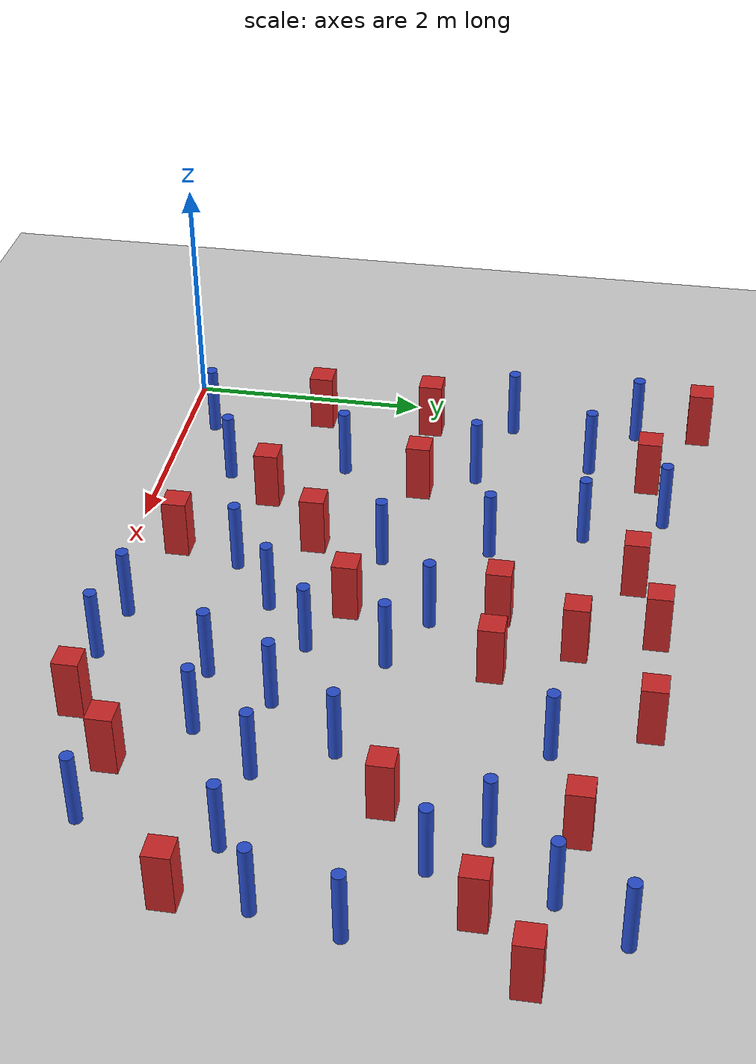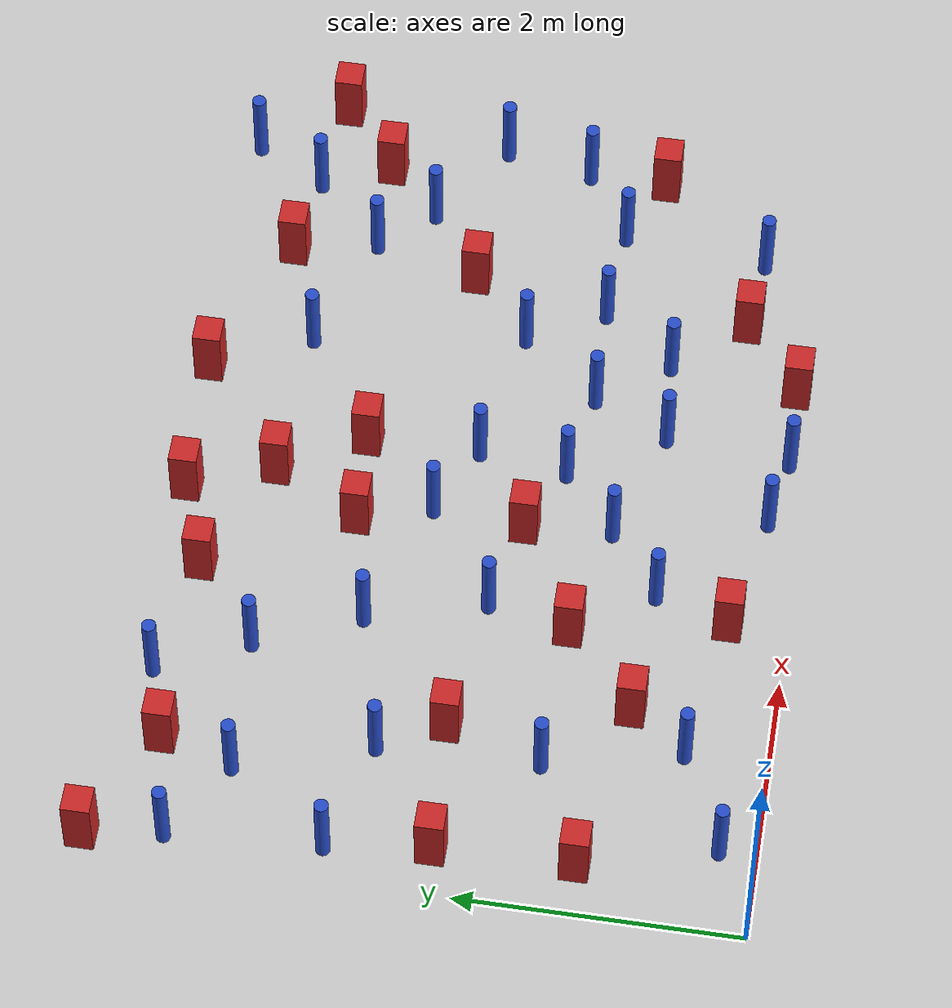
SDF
<sdf version="1.6">
 <world name="default">
  <model name="ground_plane">
   <static>1</static>
   <link name="link">
    <collision name="collision">
     <geometry><plane><normal>0 0 1</normal><size>100 100</size></plane></geometry>
     <surface><friction><ode><mu>100</mu><mu2>50</mu2></ode></friction></surface>
    </collision>
    <visual name="visual">
     <cast_shadows>0</cast_shadows>
     <geometry><plane><normal>0 0 1</normal><size>100 100</size></plane></geometry>
     <material>
      <ambient>1.0 1.0 1.0 1.0</ambient>
      <diffuse>0.8 0.8 0.8 1.0</diffuse>
      <specular>0.01 0.01 0.01 1.000000</specular>
     </material>
    </visual>
   </link>
  </model>
  <model name="square_post_obstacle6">
   <static>true</static>
   <pose>1.60942425085 0.988054612584 1.91545236811e-07 -7.35059704564e-06 1.12565212e-07 2.39332434364e-05</pose>
   <link name="link">
    <pose>0 0 0.25 0 -0 0</pose>
    <inertial>
     <mass>100</mass>
     <inertia>
      <ixx>0.166667</ixx>
      <ixy>0</ixy>
      <ixz>0</ixz>
      <iyy>0.166667</iyy>
      <iyz>0</iyz>
      <izz>0.166667</izz>
     </inertia>
    </inertial>
    <collision name="collision"><geometry><box><size>.2 .2 .5</size></box></geometry></collision>
    <visual name="visual">
     <geometry><box><size>.2 .2 .5</size></box></geometry>
     <material>
      <script><name>Gazebo/Red</name><uri>file://media/materials/scripts/gazebo.material</uri></script>
     </material>
    </visual>
   </link>
  </model>
  <model name="square_post_obstacle8">
   <static>true</static>
   <pose>4.03454843956 4.36539014241 1.91545236811e-07 -7.35059704564e-06 1.12565212e-07 2.39332434364e-05</pose>
   <link name="link">
    <pose>0 0 0.25 0 -0 0</pose>
    <inertial>
     <mass>100</mass>
     <inertia>
      <ixx>0.166667</ixx>
      <ixy>0</ixy>
      <ixz>0</ixz>
      <iyy>0.166667</iyy>
      <iyz>0</iyz>
      <izz>0.166667</izz>
     </inertia>
    </inertial>
    <collision name="collision"><geometry><box><size>.2 .2 .5</size></box></geometry></collision>
    <visual name="visual">
     <geometry><box><size>.2 .2 .5</size></box></geometry>
     <material>
      <script><name>Gazebo/Red</name><uri>file://media/materials/scripts/gazebo.material</uri></script>
     </material>
    </visual>
   </link>
  </model>
  <model name="square_post_obstacle15">
   <static>true</static>
   <pose>5.98368402551 3.34213384445 1.91545236811e-07 -7.35059704564e-06 1.12565212e-07 2.39332434364e-05</pose>
   <link name="link">
    <pose>0 0 0.25 0 -0 0</pose>
    <inertial>
     <mass>100</mass>
     <inertia>
      <ixx>0.166667</ixx>
      <ixy>0</ixy>
      <ixz>0</ixz>
      <iyy>0.166667</iyy>
      <iyz>0</iyz>
      <izz>0.166667</izz>
     </inertia>
    </inertial>
    <collision name="collision"><geometry><box><size>.2 .2 .5</size></box></geometry></collision>
    <visual name="visual">
     <geometry><box><size>.2 .2 .5</size></box></geometry>
     <material>
      <script><name>Gazebo/Red</name><uri>file://media/materials/scripts/gazebo.material</uri></script>
     </material>
    </visual>
   </link>
  </model>
  <model name="pole_obstacle9">
   <static>true</static>
   <pose>3.57325303484 2.32983173378 7.38925637345e-09 -8.47170692798e-08 1.24976764939e-08 -1.74513093025e-07</pose>
   <link name="link">
    <pose>0 0 0.3 0 -0 0</pose>
    <inertial>
     <mass>1</mass>
     <inertia><ixx>0.145833</ixx><ixy>0</ixy><ixz>0</ixz><iyy>0.145833</iyy><iyz>0</iyz><izz>0.125</izz></inertia>
    </inertial>
    <collision name="collision">
     <geometry><cylinder><radius>0.05</radius><length>.6</length></cylinder></geometry>
    </collision>
    <visual name="visual">
     <geometry><cylinder><radius>0.05</radius><length>.6</length></cylinder></geometry>
     <material>
      <script><name>Gazebo/Blue</name><uri>file://media/materials/scripts/gazebo.material</uri></script>
     </material>
    </visual>
   </link>
  </model>
  <model name="square_post_obstacle17">
   <static>true</static>
   <pose>2.98692828114 4.34356148915 1.91545236811e-07 -7.35059704564e-06 1.12565212e-07 2.39332434364e-05</pose>
   <link name="link">
    <pose>0 0 0.25 0 -0 0</pose>
    <inertial>
     <mass>100</mass>
     <inertia>
      <ixx>0.166667</ixx>
      <ixy>0</ixy>
      <ixz>0</ixz>
      <iyy>0.166667</iyy>
      <iyz>0</iyz>
      <izz>0.166667</izz>
     </inertia>
    </inertial>
    <collision name="collision"><geometry><box><size>.2 .2 .5</size></box></geometry></collision>
    <visual name="visual">
     <geometry><box><size>.2 .2 .5</size></box></geometry>
     <material>
      <script><name>Gazebo/Red</name><uri>file://media/materials/scripts/gazebo.material</uri></script>
     </material>
    </visual>
   </link>
  </model>
  <model name="square_post_obstacle24">
   <static>true</static>
   <pose>4.42241109473 0.156038550293 1.91545236811e-07 -7.35059704564e-06 1.12565212e-07 2.39332434364e-05</pose>
   <link name="link">
    <pose>0 0 0.25 0 -0 0</pose>
    <inertial>
     <mass>100</mass>
     <inertia>
      <ixx>0.166667</ixx>
      <ixy>0</ixy>
      <ixz>0</ixz>
      <iyy>0.166667</iyy>
      <iyz>0</iyz>
      <izz>0.166667</izz>
     </inertia>
    </inertial>
    <collision name="collision"><geometry><box><size>.2 .2 .5</size></box></geometry></collision>
    <visual name="visual">
     <geometry><box><size>.2 .2 .5</size></box></geometry>
     <material>
      <script><name>Gazebo/Red</name><uri>file://media/materials/scripts/gazebo.material</uri></script>
     </material>
    </visual>
   </link>
  </model>
  <model name="square_post_obstacle27">
   <static>true</static>
   <pose>2.34581329944 4.12629788285 1.91545236811e-07 -7.35059704564e-06 1.12565212e-07 2.39332434364e-05</pose>
   <link name="link">
    <pose>0 0 0.25 0 -0 0</pose>
    <inertial>
     <mass>100</mass>
     <inertia>
      <ixx>0.166667</ixx>
      <ixy>0</ixy>
      <ixz>0</ixz>
      <iyy>0.166667</iyy>
      <iyz>0</iyz>
      <izz>0.166667</izz>
     </inertia>
    </inertial>
    <collision name="collision"><geometry><box><size>.2 .2 .5</size></box></geometry></collision>
    <visual name="visual">
     <geometry><box><size>.2 .2 .5</size></box></geometry>
     <material>
      <script><name>Gazebo/Red</name><uri>file://media/materials/scripts/gazebo.material</uri></script>
     </material>
    </visual>
   </link>
  </model>
  <model name="pole_obstacle18">
   <static>true</static>
   <pose>1.09556742377 1.54165074183 7.38925637345e-09 -8.471706928e-08 1.24976765079e-08 -1.74513093017e-07</pose>
   <link name="link">
    <pose>0 0 0.3 0 -0 0</pose>
    <inertial>
     <mass>1</mass>
     <inertia><ixx>0.145833</ixx><ixy>0</ixy><ixz>0</ixz><iyy>0.145833</iyy><iyz>0</iyz><izz>0.125</izz></inertia>
    </inertial>
    <collision name="collision">
     <geometry><cylinder><radius>0.05</radius><length>.6</length></cylinder></geometry>
    </collision>
    <visual name="visual">
     <geometry><cylinder><radius>0.05</radius><length>.6</length></cylinder></geometry>
     <material>
      <script><name>Gazebo/Blue</name><uri>file://media/materials/scripts/gazebo.material</uri></script>
     </material>
    </visual>
   </link>
  </model>
  <model name="square_post_obstacle29">
   <static>true</static>
   <pose>0.333099254141 2.17948500555 1.91545236811e-07 -7.35059704564e-06 1.12565212e-07 2.39332434364e-05</pose>
   <link name="link">
    <pose>0 0 0.25 0 -0 0</pose>
    <inertial>
     <mass>100</mass>
     <inertia>
      <ixx>0.166667</ixx>
      <ixy>0</ixy>
      <ixz>0</ixz>
      <iyy>0.166667</iyy>
      <iyz>0</iyz>
      <izz>0.166667</izz>
     </inertia>
    </inertial>
    <collision name="collision"><geometry><box><size>.2 .2 .5</size></box></geometry></collision>
    <visual name="visual">
     <geometry><box><size>.2 .2 .5</size></box></geometry>
     <material>
      <script><name>Gazebo/Red</name><uri>file://media/materials/scripts/gazebo.material</uri></script>
     </material>
    </visual>
   </link>
  </model>
  <model name="pole_obstacle27">
   <static>true</static>
   <pose>0.178403654068 3.98952874488 7.38925637345e-09 -8.471706928e-08 1.24976765109e-08 -1.74513093015e-07</pose>
   <link name="link">
    <pose>0 0 0.3 0 -0 0</pose>
    <inertial>
     <mass>1</mass>
     <inertia><ixx>0.145833</ixx><ixy>0</ixy><ixz>0</ixz><iyy>0.145833</iyy><iyz>0</iyz><izz>0.125</izz></inertia>
    </inertial>
    <collision name="collision">
     <geometry><cylinder><radius>0.05</radius><length>.6</length></cylinder></geometry>
    </collision>
    <visual name="visual">
     <geometry><cylinder><radius>0.05</radius><length>.6</length></cylinder></geometry>
     <material>
      <script><name>Gazebo/Blue</name><uri>file://media/materials/scripts/gazebo.material</uri></script>
     </material>
    </visual>
   </link>
  </model>
  <model name="pole_obstacle31">
   <static>true</static>
   <pose>2.55930343675 0.937314324829 7.38925637345e-09 -8.471706928e-08 1.24976765177e-08 -1.74513093012e-07</pose>
   <link name="link">
    <pose>0 0 0.3 0 -0 0</pose>
    <inertial>
     <mass>1</mass>
     <inertia><ixx>0.145833</ixx><ixy>0</ixy><ixz>0</ixz><iyy>0.145833</iyy><iyz>0</iyz><izz>0.125</izz></inertia>
    </inertial>
    <collision name="collision">
     <geometry><cylinder><radius>0.05</radius><length>.6</length></cylinder></geometry>
    </collision>
    <visual name="visual">
     <geometry><cylinder><radius>0.05</radius><length>.6</length></cylinder></geometry>
     <material>
      <script><name>Gazebo/Blue</name><uri>file://media/materials/scripts/gazebo.material</uri></script>
     </material>
    </visual>
   </link>
  </model>
  <model name="square_post_obstacle35">
   <static>true</static>
   <pose>1.30073885642 2.22475498952 1.91545236811e-07 -7.35059704564e-06 1.12565212e-07 2.39332434364e-05</pose>
   <link name="link">
    <pose>0 0 0.25 0 -0 0</pose>
    <inertial>
     <mass>100</mass>
     <inertia>
      <ixx>0.166667</ixx>
      <ixy>0</ixy>
      <ixz>0</ixz>
      <iyy>0.166667</iyy>
      <iyz>0</iyz>
      <izz>0.166667</izz>
     </inertia>
    </inertial>
    <collision name="collision"><geometry><box><size>.2 .2 .5</size></box></geometry></collision>
    <visual name="visual">
     <geometry><box><size>.2 .2 .5</size></box></geometry>
     <material>
      <script><name>Gazebo/Red</name><uri>file://media/materials/scripts/gazebo.material</uri></script>
     </material>
    </visual>
   </link>
  </model>
  <model name="pole_obstacle53">
   <static>true</static>
   <pose>0.759937927615 3.6263753583 7.38925637345e-09 -8.47170692799e-08 1.2497676509e-08 -1.74513093016e-07</pose>
   <link name="link">
    <pose>0 0 0.3 0 -0 0</pose>
    <inertial>
     <mass>1</mass>
     <inertia><ixx>0.145833</ixx><ixy>0</ixy><ixz>0</ixz><iyy>0.145833</iyy><iyz>0</iyz><izz>0.125</izz></inertia>
    </inertial>
    <collision name="collision">
     <geometry><cylinder><radius>0.05</radius><length>.6</length></cylinder></geometry>
    </collision>
    <visual name="visual">
     <geometry><cylinder><radius>0.05</radius><length>.6</length></cylinder></geometry>
     <material>
      <script><name>Gazebo/Blue</name><uri>file://media/materials/scripts/gazebo.material</uri></script>
     </material>
    </visual>
   </link>
  </model>
  <model name="pole_obstacle59">
   <static>true</static>
   <pose>1.06092873174 2.67650158417 7.38925637345e-09 -8.47170692799e-08 1.24976765053e-08 -1.74513093017e-07</pose>
   <link name="link">
    <pose>0 0 0.3 0 -0 0</pose>
    <inertial>
     <mass>1</mass>
     <inertia><ixx>0.145833</ixx><ixy>0</ixy><ixz>0</ixz><iyy>0.145833</iyy><iyz>0</iyz><izz>0.125</izz></inertia>
    </inertial>
    <collision name="collision">
     <geometry><cylinder><radius>0.05</radius><length>.6</length></cylinder></geometry>
    </collision>
    <visual name="visual">
     <geometry><cylinder><radius>0.05</radius><length>.6</length></cylinder></geometry>
     <material>
      <script><name>Gazebo/Blue</name><uri>file://media/materials/scripts/gazebo.material</uri></script>
     </material>
    </visual>
   </link>
  </model>
  <model name="pole_obstacle62">
   <static>true</static>
   <pose>5.62256412023 1.5481958719 7.38925637345e-09 -8.471706928e-08 1.24976765134e-08 -1.74513093015e-07</pose>
   <link name="link">
    <pose>0 0 0.3 0 -0 0</pose>
    <inertial>
     <mass>1</mass>
     <inertia><ixx>0.145833</ixx><ixy>0</ixy><ixz>0</ixz><iyy>0.145833</iyy><iyz>0</iyz><izz>0.125</izz></inertia>
    </inertial>
    <collision name="collision">
     <geometry><cylinder><radius>0.05</radius><length>.6</length></cylinder></geometry>
    </collision>
    <visual name="visual">
     <geometry><cylinder><radius>0.05</radius><length>.6</length></cylinder></geometry>
     <material>
      <script><name>Gazebo/Blue</name><uri>file://media/materials/scripts/gazebo.material</uri></script>
     </material>
    </visual>
   </link>
  </model>
  <model name="square_post_obstacle64">
   <static>true</static>
   <pose>5.08806290985 2.57877850138 1.91545236811e-07 -7.35059704564e-06 1.12565212e-07 2.39332434364e-05</pose>
   <link name="link">
    <pose>0 0 0.25 0 -0 0</pose>
    <inertial>
     <mass>100</mass>
     <inertia>
      <ixx>0.166667</ixx>
      <ixy>0</ixy>
      <ixz>0</ixz>
      <iyy>0.166667</iyy>
      <iyz>0</iyz>
      <izz>0.166667</izz>
     </inertia>
    </inertial>
    <collision name="collision"><geometry><box><size>.2 .2 .5</size></box></geometry></collision>
    <visual name="visual">
     <geometry><box><size>.2 .2 .5</size></box></geometry>
     <material>
      <script><name>Gazebo/Red</name><uri>file://media/materials/scripts/gazebo.material</uri></script>
     </material>
    </visual>
   </link>
  </model>
  <model name="square_post_obstacle66">
   <static>true</static>
   <pose>2.88798869809 3.10671803235 1.91545236811e-07 -7.35059704564e-06 1.12565212e-07 2.39332434364e-05</pose>
   <link name="link">
    <pose>0 0 0.25 0 -0 0</pose>
    <inertial>
     <mass>100</mass>
     <inertia>
      <ixx>0.166667</ixx>
      <ixy>0</ixy>
      <ixz>0</ixz>
      <iyy>0.166667</iyy>
      <iyz>0</iyz>
      <izz>0.166667</izz>
     </inertia>
    </inertial>
    <collision name="collision"><geometry><box><size>.2 .2 .5</size></box></geometry></collision>
    <visual name="visual">
     <geometry><box><size>.2 .2 .5</size></box></geometry>
     <material>
      <script><name>Gazebo/Red</name><uri>file://media/materials/scripts/gazebo.material</uri></script>
     </material>
    </visual>
   </link>
  </model>
  <model name="pole_obstacle66">
   <static>true</static>
   <pose>4.37131435378 3.66765623639 7.38925637345e-09 -8.47170692798e-08 1.24976764937e-08 -1.74513093023e-07</pose>
   <link name="link">
    <pose>0 0 0.3 0 -0 0</pose>
    <inertial>
     <mass>1</mass>
     <inertia><ixx>0.145833</ixx><ixy>0</ixy><ixz>0</ixz><iyy>0.145833</iyy><iyz>0</iyz><izz>0.125</izz></inertia>
    </inertial>
    <collision name="collision">
     <geometry><cylinder><radius>0.05</radius><length>.6</length></cylinder></geometry>
    </collision>
    <visual name="visual">
     <geometry><cylinder><radius>0.05</radius><length>.6</length></cylinder></geometry>
     <material>
      <script><name>Gazebo/Blue</name><uri>file://media/materials/scripts/gazebo.material</uri></script>
     </material>
    </visual>
   </link>
  </model>
  <model name="pole_obstacle73">
   <static>true</static>
   <pose>4.14918572774 1.57760948705 7.38925637345e-09 -8.471706928e-08 1.24976765134e-08 -1.74513093015e-07</pose>
   <link name="link">
    <pose>0 0 0.3 0 -0 0</pose>
    <inertial>
     <mass>1</mass>
     <inertia><ixx>0.145833</ixx><ixy>0</ixy><ixz>0</ixz><iyy>0.145833</iyy><iyz>0</iyz><izz>0.125</izz></inertia>
    </inertial>
    <collision name="collision">
     <geometry><cylinder><radius>0.05</radius><length>.6</length></cylinder></geometry>
    </collision>
    <visual name="visual">
     <geometry><cylinder><radius>0.05</radius><length>.6</length></cylinder></geometry>
     <material>
      <script><name>Gazebo/Blue</name><uri>file://media/materials/scripts/gazebo.material</uri></script>
     </material>
    </visual>
   </link>
  </model>
  <model name="pole_obstacle78">
   <static>true</static>
   <pose>5.61506572078 2.96366348719 7.38925637345e-09 -8.47170692798e-08 1.24976764937e-08 -1.74513093023e-07</pose>
   <link name="link">
    <pose>0 0 0.3 0 -0 0</pose>
    <inertial>
     <mass>1</mass>
     <inertia><ixx>0.145833</ixx><ixy>0</ixy><ixz>0</ixz><iyy>0.145833</iyy><iyz>0</iyz><izz>0.125</izz></inertia>
    </inertial>
    <collision name="collision">
     <geometry><cylinder><radius>0.05</radius><length>.6</length></cylinder></geometry>
    </collision>
    <visual name="visual">
     <geometry><cylinder><radius>0.05</radius><length>.6</length></cylinder></geometry>
     <material>
      <script><name>Gazebo/Blue</name><uri>file://media/materials/scripts/gazebo.material</uri></script>
     </material>
    </visual>
   </link>
  </model>
  <model name="pole_obstacle92">
   <static>true</static>
   <pose>3.89072455661 1.02936434891 7.38925637345e-09 -8.47170692793e-08 1.2497676438e-08 -1.74513093043e-07</pose>
   <link name="link">
    <pose>0 0 0.3 0 -0 0</pose>
    <inertial>
     <mass>1</mass>
     <inertia><ixx>0.145833</ixx><ixy>0</ixy><ixz>0</ixz><iyy>0.145833</iyy><iyz>0</iyz><izz>0.125</izz></inertia>
    </inertial>
    <collision name="collision">
     <geometry><cylinder><radius>0.05</radius><length>.6</length></cylinder></geometry>
    </collision>
    <visual name="visual">
     <geometry><cylinder><radius>0.05</radius><length>.6</length></cylinder></geometry>
     <material>
      <script><name>Gazebo/Blue</name><uri>file://media/materials/scripts/gazebo.material</uri></script>
     </material>
    </visual>
   </link>
  </model>
  <model name="pole_obstacle93">
   <static>true</static>
   <pose>1.75745205437 3.66325083768 7.38925637345e-09 -8.47170692799e-08 1.24976765053e-08 -1.74513093017e-07</pose>
   <link name="link">
    <pose>0 0 0.3 0 -0 0</pose>
    <inertial>
     <mass>1</mass>
     <inertia><ixx>0.145833</ixx><ixy>0</ixy><ixz>0</ixz><iyy>0.145833</iyy><iyz>0</iyz><izz>0.125</izz></inertia>
    </inertial>
    <collision name="collision">
     <geometry><cylinder><radius>0.05</radius><length>.6</length></cylinder></geometry>
    </collision>
    <visual name="visual">
     <geometry><cylinder><radius>0.05</radius><length>.6</length></cylinder></geometry>
     <material>
      <script><name>Gazebo/Blue</name><uri>file://media/materials/scripts/gazebo.material</uri></script>
     </material>
    </visual>
   </link>
  </model>
  <model name="pole_obstacle103">
   <static>true</static>
   <pose>0.242533858838 2.9050483122 7.38925637345e-09 -8.47170692792e-08 1.24976764352e-08 -1.74513093043e-07</pose>
   <link name="link">
    <pose>0 0 0.3 0 -0 0</pose>
    <inertial>
     <mass>1</mass>
     <inertia><ixx>0.145833</ixx><ixy>0</ixy><ixz>0</ixz><iyy>0.145833</iyy><iyz>0</iyz><izz>0.125</izz></inertia>
    </inertial>
    <collision name="collision">
     <geometry><cylinder><radius>0.05</radius><length>.6</length></cylinder></geometry>
    </collision>
    <visual name="visual">
     <geometry><cylinder><radius>0.05</radius><length>.6</length></cylinder></geometry>
     <material>
      <script><name>Gazebo/Blue</name><uri>file://media/materials/scripts/gazebo.material</uri></script>
     </material>
    </visual>
   </link>
  </model>
  <model name="square_post_obstacle92">
   <static>true</static>
   <pose>3.21853136652 3.73488678495 1.91545236811e-07 -7.35059704564e-06 1.12565212e-07 2.39332434364e-05</pose>
   <link name="link">
    <pose>0 0 0.25 0 -0 0</pose>
    <inertial>
     <mass>100</mass>
     <inertia>
      <ixx>0.166667</ixx>
      <ixy>0</ixy>
      <ixz>0</ixz>
      <iyy>0.166667</iyy>
      <iyz>0</iyz>
      <izz>0.166667</izz>
     </inertia>
    </inertial>
    <collision name="collision"><geometry><box><size>.2 .2 .5</size></box></geometry></collision>
    <visual name="visual">
     <geometry><box><size>.2 .2 .5</size></box></geometry>
     <material>
      <script><name>Gazebo/Red</name><uri>file://media/materials/scripts/gazebo.material</uri></script>
     </material>
    </visual>
   </link>
  </model>
  <model name="pole_obstacle110">
   <static>true</static>
   <pose>2.07721195668 2.92580992702 7.38925637345e-09 -8.47170692798e-08 1.24976764939e-08 -1.74513093025e-07</pose>
   <link name="link">
    <pose>0 0 0.3 0 -0 0</pose>
    <inertial>
     <mass>1</mass>
     <inertia><ixx>0.145833</ixx><ixy>0</ixy><ixz>0</ixz><iyy>0.145833</iyy><iyz>0</iyz><izz>0.125</izz></inertia>
    </inertial>
    <collision name="collision">
     <geometry><cylinder><radius>0.05</radius><length>.6</length></cylinder></geometry>
    </collision>
    <visual name="visual">
     <geometry><cylinder><radius>0.05</radius><length>.6</length></cylinder></geometry>
     <material>
      <script><name>Gazebo/Blue</name><uri>file://media/materials/scripts/gazebo.material</uri></script>
     </material>
    </visual>
   </link>
  </model>
  <model name="pole_obstacle111">
   <static>true</static>
   <pose>3.48333587024 1.69449595473 7.38925637345e-09 -8.471706928e-08 1.24976765152e-08 -1.74513093012e-07</pose>
   <link name="link">
    <pose>0 0 0.3 0 -0 0</pose>
    <inertial>
     <mass>1</mass>
     <inertia><ixx>0.145833</ixx><ixy>0</ixy><ixz>0</ixz><iyy>0.145833</iyy><iyz>0</iyz><izz>0.125</izz></inertia>
    </inertial>
    <collision name="collision">
     <geometry><cylinder><radius>0.05</radius><length>.6</length></cylinder></geometry>
    </collision>
    <visual name="visual">
     <geometry><cylinder><radius>0.05</radius><length>.6</length></cylinder></geometry>
     <material>
      <script><name>Gazebo/Blue</name><uri>file://media/materials/scripts/gazebo.material</uri></script>
     </material>
    </visual>
   </link>
  </model>
  <model name="square_post_obstacle101">
   <static>true</static>
   <pose>4.94626028807 0.567426225735 1.91545236811e-07 -7.35059704564e-06 1.12565212e-07 2.39332434364e-05</pose>
   <link name="link">
    <pose>0 0 0.25 0 -0 0</pose>
    <inertial>
     <mass>100</mass>
     <inertia>
      <ixx>0.166667</ixx>
      <ixy>0</ixy>
      <ixz>0</ixz>
      <iyy>0.166667</iyy>
      <iyz>0</iyz>
      <izz>0.166667</izz>
     </inertia>
    </inertial>
    <collision name="collision"><geometry><box><size>.2 .2 .5</size></box></geometry></collision>
    <visual name="visual">
     <geometry><box><size>.2 .2 .5</size></box></geometry>
     <material>
      <script><name>Gazebo/Red</name><uri>file://media/materials/scripts/gazebo.material</uri></script>
     </material>
    </visual>
   </link>
  </model>
  <model name="pole_obstacle115">
   <static>true</static>
   <pose>3.04409779758 2.58319362319 7.38925637345e-09 -8.47170692798e-08 1.24976764939e-08 -1.74513093025e-07</pose>
   <link name="link">
    <pose>0 0 0.3 0 -0 0</pose>
    <inertial>
     <mass>1</mass>
     <inertia><ixx>0.145833</ixx><ixy>0</ixy><ixz>0</ixz><iyy>0.145833</iyy><iyz>0</iyz><izz>0.125</izz></inertia>
    </inertial>
    <collision name="collision">
     <geometry><cylinder><radius>0.05</radius><length>.6</length></cylinder></geometry>
    </collision>
    <visual name="visual">
     <geometry><cylinder><radius>0.05</radius><length>.6</length></cylinder></geometry>
     <material>
      <script><name>Gazebo/Blue</name><uri>file://media/materials/scripts/gazebo.material</uri></script>
     </material>
    </visual>
   </link>
  </model>
  <model name="pole_obstacle121">
   <static>true</static>
   <pose>2.31599613 2.0820989333 7.38925637345e-09 -8.47170692798e-08 1.24976764939e-08 -1.74513093025e-07</pose>
   <link name="link">
    <pose>0 0 0.3 0 -0 0</pose>
    <inertial>
     <mass>1</mass>
     <inertia><ixx>0.145833</ixx><ixy>0</ixy><ixz>0</ixz><iyy>0.145833</iyy><iyz>0</iyz><izz>0.125</izz></inertia>
    </inertial>
    <collision name="collision">
     <geometry><cylinder><radius>0.05</radius><length>.6</length></cylinder></geometry>
    </collision>
    <visual name="visual">
     <geometry><cylinder><radius>0.05</radius><length>.6</length></cylinder></geometry>
     <material>
      <script><name>Gazebo/Blue</name><uri>file://media/materials/scripts/gazebo.material</uri></script>
     </material>
    </visual>
   </link>
  </model>
  <model name="pole_obstacle136">
   <static>true</static>
   <pose>5.77192300937 3.84196869045 7.38925637345e-09 -8.47170692798e-08 1.24976764937e-08 -1.74513093023e-07</pose>
   <link name="link">
    <pose>0 0 0.3 0 -0 0</pose>
    <inertial>
     <mass>1</mass>
     <inertia><ixx>0.145833</ixx><ixy>0</ixy><ixz>0</ixz><iyy>0.145833</iyy><iyz>0</iyz><izz>0.125</izz></inertia>
    </inertial>
    <collision name="collision">
     <geometry><cylinder><radius>0.05</radius><length>.6</length></cylinder></geometry>
    </collision>
    <visual name="visual">
     <geometry><cylinder><radius>0.05</radius><length>.6</length></cylinder></geometry>
     <material>
      <script><name>Gazebo/Blue</name><uri>file://media/materials/scripts/gazebo.material</uri></script>
     </material>
    </visual>
   </link>
  </model>
  <model name="pole_obstacle147">
   <static>true</static>
   <pose>5.52291320593 0.509091211301 7.38925637345e-09 -8.471706928e-08 1.24976765164e-08 -1.74513093012e-07</pose>
   <link name="link">
    <pose>0 0 0.3 0 -0 0</pose>
    <inertial>
     <mass>1</mass>
     <inertia><ixx>0.145833</ixx><ixy>0</ixy><ixz>0</ixz><iyy>0.145833</iyy><iyz>0</iyz><izz>0.125</izz></inertia>
    </inertial>
    <collision name="collision">
     <geometry><cylinder><radius>0.05</radius><length>.6</length></cylinder></geometry>
    </collision>
    <visual name="visual">
     <geometry><cylinder><radius>0.05</radius><length>.6</length></cylinder></geometry>
     <material>
      <script><name>Gazebo/Blue</name><uri>file://media/materials/scripts/gazebo.material</uri></script>
     </material>
    </visual>
   </link>
  </model>
  <model name="pole_obstacle155">
   <static>true</static>
   <pose>1.45495502458 4.30251321785 7.38925637345e-09 -8.47170692799e-08 1.24976765033e-08 -1.74513093018e-07</pose>
   <link name="link">
    <pose>0 0 0.3 0 -0 0</pose>
    <inertial>
     <mass>1</mass>
     <inertia><ixx>0.145833</ixx><ixy>0</ixy><ixz>0</ixz><iyy>0.145833</iyy><iyz>0</iyz><izz>0.125</izz></inertia>
    </inertial>
    <collision name="collision">
     <geometry><cylinder><radius>0.05</radius><length>.6</length></cylinder></geometry>
    </collision>
    <visual name="visual">
     <geometry><cylinder><radius>0.05</radius><length>.6</length></cylinder></geometry>
     <material>
      <script><name>Gazebo/Blue</name><uri>file://media/materials/scripts/gazebo.material</uri></script>
     </material>
    </visual>
   </link>
  </model>
  <model name="square_post_obstacle150">
   <static>true</static>
   <pose>0.104401019979 4.53678349561 1.91545236811e-07 -7.35059704564e-06 1.12565212e-07 2.39332434364e-05</pose>
   <link name="link">
    <pose>0 0 0.25 0 -0 0</pose>
    <inertial>
     <mass>100</mass>
     <inertia>
      <ixx>0.166667</ixx>
      <ixy>0</ixy>
      <ixz>0</ixz>
      <iyy>0.166667</iyy>
      <iyz>0</iyz>
      <izz>0.166667</izz>
     </inertia>
    </inertial>
    <collision name="collision"><geometry><box><size>.2 .2 .5</size></box></geometry></collision>
    <visual name="visual">
     <geometry><box><size>.2 .2 .5</size></box></geometry>
     <material>
      <script><name>Gazebo/Red</name><uri>file://media/materials/scripts/gazebo.material</uri></script>
     </material>
    </visual>
   </link>
  </model>
  <model name="pole_obstacle160">
   <static>true</static>
   <pose>6.27187090853 2.5148855211 7.38925637345e-09 -8.47170692798e-08 1.24976764937e-08 -1.74513093023e-07</pose>
   <link name="link">
    <pose>0 0 0.3 0 -0 0</pose>
    <inertial>
     <mass>1</mass>
     <inertia><ixx>0.145833</ixx><ixy>0</ixy><ixz>0</ixz><iyy>0.145833</iyy><iyz>0</iyz><izz>0.125</izz></inertia>
    </inertial>
    <collision name="collision">
     <geometry><cylinder><radius>0.05</radius><length>.6</length></cylinder></geometry>
    </collision>
    <visual name="visual">
     <geometry><cylinder><radius>0.05</radius><length>.6</length></cylinder></geometry>
     <material>
      <script><name>Gazebo/Blue</name><uri>file://media/materials/scripts/gazebo.material</uri></script>
     </material>
    </visual>
   </link>
  </model>
  <model name="square_post_obstacle154">
   <static>true</static>
   <pose>0.354004294311 1.20475490782 1.91545236811e-07 -7.35059704564e-06 1.12565212e-07 2.39332434364e-05</pose>
   <link name="link">
    <pose>0 0 0.25 0 -0 0</pose>
    <inertial>
     <mass>100</mass>
     <inertia>
      <ixx>0.166667</ixx>
      <ixy>0</ixy>
      <ixz>0</ixz>
      <iyy>0.166667</iyy>
      <iyz>0</iyz>
      <izz>0.166667</izz>
     </inertia>
    </inertial>
    <collision name="collision"><geometry><box><size>.2 .2 .5</size></box></geometry></collision>
    <visual name="visual">
     <geometry><box><size>.2 .2 .5</size></box></geometry>
     <material>
      <script><name>Gazebo/Red</name><uri>file://media/materials/scripts/gazebo.material</uri></script>
     </material>
    </visual>
   </link>
  </model>
  <model name="square_post_obstacle162">
   <static>true</static>
   <pose>3.56019104194 3.13539673839 1.91545236811e-07 -7.35059704564e-06 1.12565212e-07 2.39332434364e-05</pose>
   <link name="link">
    <pose>0 0 0.25 0 -0 0</pose>
    <inertial>
     <mass>100</mass>
     <inertia>
      <ixx>0.166667</ixx>
      <ixy>0</ixy>
      <ixz>0</ixz>
      <iyy>0.166667</iyy>
      <iyz>0</iyz>
      <izz>0.166667</izz>
     </inertia>
    </inertial>
    <collision name="collision"><geometry><box><size>.2 .2 .5</size></box></geometry></collision>
    <visual name="visual">
     <geometry><box><size>.2 .2 .5</size></box></geometry>
     <material>
      <script><name>Gazebo/Red</name><uri>file://media/materials/scripts/gazebo.material</uri></script>
     </material>
    </visual>
   </link>
  </model>
  <model name="pole_obstacle175">
   <static>true</static>
   <pose>4.60287165524 2.14713730575 7.38925637345e-09 -8.47170692798e-08 1.24976764937e-08 -1.74513093023e-07</pose>
   <link name="link">
    <pose>0 0 0.3 0 -0 0</pose>
    <inertial>
     <mass>1</mass>
     <inertia><ixx>0.145833</ixx><ixy>0</ixy><ixz>0</ixz><iyy>0.145833</iyy><iyz>0</iyz><izz>0.125</izz></inertia>
    </inertial>
    <collision name="collision">
     <geometry><cylinder><radius>0.05</radius><length>.6</length></cylinder></geometry>
    </collision>
    <visual name="visual">
     <geometry><cylinder><radius>0.05</radius><length>.6</length></cylinder></geometry>
     <material>
      <script><name>Gazebo/Blue</name><uri>file://media/materials/scripts/gazebo.material</uri></script>
     </material>
    </visual>
   </link>
  </model>
  <model name="pole_obstacle176">
   <static>true</static>
   <pose>4.90546157203 1.59719537273 7.38925637345e-09 -8.471706928e-08 1.24976765134e-08 -1.74513093015e-07</pose>
   <link name="link">
    <pose>0 0 0.3 0 -0 0</pose>
    <inertial>
     <mass>1</mass>
     <inertia><ixx>0.145833</ixx><ixy>0</ixy><ixz>0</ixz><iyy>0.145833</iyy><iyz>0</iyz><izz>0.125</izz></inertia>
    </inertial>
    <collision name="collision">
     <geometry><cylinder><radius>0.05</radius><length>.6</length></cylinder></geometry>
    </collision>
    <visual name="visual">
     <geometry><cylinder><radius>0.05</radius><length>.6</length></cylinder></geometry>
     <material>
      <script><name>Gazebo/Blue</name><uri>file://media/materials/scripts/gazebo.material</uri></script>
     </material>
    </visual>
   </link>
  </model>
  <model name="square_post_obstacle165">
   <static>true</static>
   <pose>2.39564811858 0.410809038717 1.91545236811e-07 -7.35059704564e-06 1.12565212e-07 2.39332434364e-05</pose>
   <link name="link">
    <pose>0 0 0.25 0 -0 0</pose>
    <inertial>
     <mass>100</mass>
     <inertia>
      <ixx>0.166667</ixx>
      <ixy>0</ixy>
      <ixz>0</ixz>
      <iyy>0.166667</iyy>
      <iyz>0</iyz>
      <izz>0.166667</izz>
     </inertia>
    </inertial>
    <collision name="collision"><geometry><box><size>.2 .2 .5</size></box></geometry></collision>
    <visual name="visual">
     <geometry><box><size>.2 .2 .5</size></box></geometry>
     <material>
      <script><name>Gazebo/Red</name><uri>file://media/materials/scripts/gazebo.material</uri></script>
     </material>
    </visual>
   </link>
  </model>
  <model name="square_post_obstacle167">
   <static>true</static>
   <pose>6.482000954 3.74200093604 1.91545236811e-07 -7.35059704564e-06 1.12565212e-07 2.39332434364e-05</pose>
   <link name="link">
    <pose>0 0 0.25 0 -0 0</pose>
    <inertial>
     <mass>100</mass>
     <inertia>
      <ixx>0.166667</ixx>
      <ixy>0</ixy>
      <ixz>0</ixz>
      <iyy>0.166667</iyy>
      <iyz>0</iyz>
      <izz>0.166667</izz>
     </inertia>
    </inertial>
    <collision name="collision"><geometry><box><size>.2 .2 .5</size></box></geometry></collision>
    <visual name="visual">
     <geometry><box><size>.2 .2 .5</size></box></geometry>
     <material>
      <script><name>Gazebo/Red</name><uri>file://media/materials/scripts/gazebo.material</uri></script>
     </material>
    </visual>
   </link>
  </model>
  <model name="square_post_obstacle168">
   <static>true</static>
   <pose>2.98748641697 1.92465432828 1.91545236811e-07 -7.35059704564e-06 1.12565212e-07 2.39332434364e-05</pose>
   <link name="link">
    <pose>0 0 0.25 0 -0 0</pose>
    <inertial>
     <mass>100</mass>
     <inertia>
      <ixx>0.166667</ixx>
      <ixy>0</ixy>
      <ixz>0</ixz>
      <iyy>0.166667</iyy>
      <iyz>0</iyz>
      <izz>0.166667</izz>
     </inertia>
    </inertial>
    <collision name="collision"><geometry><box><size>.2 .2 .5</size></box></geometry></collision>
    <visual name="visual">
     <geometry><box><size>.2 .2 .5</size></box></geometry>
     <material>
      <script><name>Gazebo/Red</name><uri>file://media/materials/scripts/gazebo.material</uri></script>
     </material>
    </visual>
   </link>
  </model>
  <model name="square_post_obstacle169">
   <static>true</static>
   <pose>6.134867828 1.31210017483 1.91545236811e-07 -7.35059704564e-06 1.12565212e-07 2.39332434364e-05</pose>
   <link name="link">
    <pose>0 0 0.25 0 -0 0</pose>
    <inertial>
     <mass>100</mass>
     <inertia>
      <ixx>0.166667</ixx>
      <ixy>0</ixy>
      <ixz>0</ixz>
      <iyy>0.166667</iyy>
      <iyz>0</iyz>
      <izz>0.166667</izz>
     </inertia>
    </inertial>
    <collision name="collision"><geometry><box><size>.2 .2 .5</size></box></geometry></collision>
    <visual name="visual">
     <geometry><box><size>.2 .2 .5</size></box></geometry>
     <material>
      <script><name>Gazebo/Red</name><uri>file://media/materials/scripts/gazebo.material</uri></script>
     </material>
    </visual>
   </link>
  </model>
  <model name="pole_obstacle179">
   <static>true</static>
   <pose>3.80782161084 0.137697811763 7.38925637345e-09 -8.471706928e-08 1.2497676517e-08 -1.74513093012e-07</pose>
   <link name="link">
    <pose>0 0 0.3 0 -0 0</pose>
    <inertial>
     <mass>1</mass>
     <inertia><ixx>0.145833</ixx><ixy>0</ixy><ixz>0</ixz><iyy>0.145833</iyy><iyz>0</iyz><izz>0.125</izz></inertia>
    </inertial>
    <collision name="collision">
     <geometry><cylinder><radius>0.05</radius><length>.6</length></cylinder></geometry>
    </collision>
    <visual name="visual">
     <geometry><cylinder><radius>0.05</radius><length>.6</length></cylinder></geometry>
     <material>
      <script><name>Gazebo/Blue</name><uri>file://media/materials/scripts/gazebo.material</uri></script>
     </material>
    </visual>
   </link>
  </model>
  <model name="pole_obstacle180">
   <static>true</static>
   <pose>3.2858672749 0.230654094223 7.38925637345e-09 -8.471706928e-08 1.24976765149e-08 -1.74513093013e-07</pose>
   <link name="link">
    <pose>0 0 0.3 0 -0 0</pose>
    <inertial>
     <mass>1</mass>
     <inertia><ixx>0.145833</ixx><ixy>0</ixy><ixz>0</ixz><iyy>0.145833</iyy><iyz>0</iyz><izz>0.125</izz></inertia>
    </inertial>
    <collision name="collision">
     <geometry><cylinder><radius>0.05</radius><length>.6</length></cylinder></geometry>
    </collision>
    <visual name="visual">
     <geometry><cylinder><radius>0.05</radius><length>.6</length></cylinder></geometry>
     <material>
      <script><name>Gazebo/Blue</name><uri>file://media/materials/scripts/gazebo.material</uri></script>
     </material>
    </visual>
   </link>
  </model>
  <model name="pole_obstacle181">
   <static>true</static>
   <pose>1.31877364808 0.580033740982 7.38925637345e-09 -8.47170692799e-08 1.24976765075e-08 -1.74513093017e-07</pose>
   <link name="link">
    <pose>0 0 0.3 0 -0 0</pose>
    <inertial>
     <mass>1</mass>
     <inertia><ixx>0.145833</ixx><ixy>0</ixy><ixz>0</ixz><iyy>0.145833</iyy><iyz>0</iyz><izz>0.125</izz></inertia>
    </inertial>
    <collision name="collision">
     <geometry><cylinder><radius>0.05</radius><length>.6</length></cylinder></geometry>
    </collision>
    <visual name="visual">
     <geometry><cylinder><radius>0.05</radius><length>.6</length></cylinder></geometry>
     <material>
      <script><name>Gazebo/Blue</name><uri>file://media/materials/scripts/gazebo.material</uri></script>
     </material>
    </visual>
   </link>
  </model>
  <model name="pole_obstacle182">
   <static>true</static>
   <pose>4.51642656433 1.07741976442 7.38925637345e-09 -8.471706928e-08 1.24976765134e-08 -1.74513093015e-07</pose>
   <link name="link">
    <pose>0 0 0.3 0 -0 0</pose>
    <inertial>
     <mass>1</mass>
     <inertia><ixx>0.145833</ixx><ixy>0</ixy><ixz>0</ixz><iyy>0.145833</iyy><iyz>0</iyz><izz>0.125</izz></inertia>
    </inertial>
    <collision name="collision">
     <geometry><cylinder><radius>0.05</radius><length>.6</length></cylinder></geometry>
    </collision>
    <visual name="visual">
     <geometry><cylinder><radius>0.05</radius><length>.6</length></cylinder></geometry>
     <material>
      <script><name>Gazebo/Blue</name><uri>file://media/materials/scripts/gazebo.material</uri></script>
     </material>
    </visual>
   </link>
  </model>
  <model name="pole_obstacle186">
   <static>true</static>
   <pose>3.03393848719 1.30542564802 7.38925637345e-09 -8.471706928e-08 1.24976765152e-08 -1.74513093012e-07</pose>
   <link name="link">
    <pose>0 0 0.3 0 -0 0</pose>
    <inertial>
     <mass>1</mass>
     <inertia><ixx>0.145833</ixx><ixy>0</ixy><ixz>0</ixz><iyy>0.145833</iyy><iyz>0</iyz><izz>0.125</izz></inertia>
    </inertial>
    <collision name="collision">
     <geometry><cylinder><radius>0.05</radius><length>.6</length></cylinder></geometry>
    </collision>
    <visual name="visual">
     <geometry><cylinder><radius>0.05</radius><length>.6</length></cylinder></geometry>
     <material>
      <script><name>Gazebo/Blue</name><uri>file://media/materials/scripts/gazebo.material</uri></script>
     </material>
    </visual>
   </link>
  </model>
  <model name="square_post_obstacle184">
   <static>true</static>
   <pose>2.18652663423 1.49925971376 1.91545236811e-07 -7.35059704564e-06 1.12565212e-07 2.39332434364e-05</pose>
   <link name="link">
    <pose>0 0 0.25 0 -0 0</pose>
    <inertial>
     <mass>100</mass>
     <inertia>
      <ixx>0.166667</ixx>
      <ixy>0</ixy>
      <ixz>0</ixz>
      <iyy>0.166667</iyy>
      <iyz>0</iyz>
      <izz>0.166667</izz>
     </inertia>
    </inertial>
    <collision name="collision"><geometry><box><size>.2 .2 .5</size></box></geometry></collision>
    <visual name="visual">
     <geometry><box><size>.2 .2 .5</size></box></geometry>
     <material>
      <script><name>Gazebo/Red</name><uri>file://media/materials/scripts/gazebo.material</uri></script>
     </material>
    </visual>
   </link>
  </model>
  <model name="square_post_obstacle197">
   <static>true</static>
   <pose>5.14953354285 3.93723240609 1.91545236811e-07 -7.35059704564e-06 1.12565212e-07 2.39332434364e-05</pose>
   <link name="link">
    <pose>0 0 0.25 0 -0 0</pose>
    <inertial>
     <mass>100</mass>
     <inertia>
      <ixx>0.166667</ixx>
      <ixy>0</ixy>
      <ixz>0</ixz>
      <iyy>0.166667</iyy>
      <iyz>0</iyz>
      <izz>0.166667</izz>
     </inertia>
    </inertial>
    <collision name="collision"><geometry><box><size>.2 .2 .5</size></box></geometry></collision>
    <visual name="visual">
     <geometry><box><size>.2 .2 .5</size></box></geometry>
     <material>
      <script><name>Gazebo/Red</name><uri>file://media/materials/scripts/gazebo.material</uri></script>
     </material>
    </visual>
   </link>
  </model>
  <model name="square_post_obstacle201">
   <static>true</static>
   <pose>0.924410821922 4.13942480363 1.91545236811e-07 -7.35059704564e-06 1.12565212e-07 2.39332434364e-05</pose>
   <link name="link">
    <pose>0 0 0.25 0 -0 0</pose>
    <inertial>
     <mass>100</mass>
     <inertia>
      <ixx>0.166667</ixx>
      <ixy>0</ixy>
      <ixz>0</ixz>
      <iyy>0.166667</iyy>
      <iyz>0</iyz>
      <izz>0.166667</izz>
     </inertia>
    </inertial>
    <collision name="collision"><geometry><box><size>.2 .2 .5</size></box></geometry></collision>
    <visual name="visual">
     <geometry><box><size>.2 .2 .5</size></box></geometry>
     <material>
      <script><name>Gazebo/Red</name><uri>file://media/materials/scripts/gazebo.material</uri></script>
     </material>
    </visual>
   </link>
  </model>
  <model name="pole_obstacle195">
   <static>true</static>
   <pose>5.2780506213 3.34346327395 7.38925637345e-09 -8.47170692798e-08 1.24976764937e-08 -1.74513093023e-07</pose>
   <link name="link">
    <pose>0 0 0.3 0 -0 0</pose>
    <inertial>
     <mass>1</mass>
     <inertia><ixx>0.145833</ixx><ixy>0</ixy><ixz>0</ixz><iyy>0.145833</iyy><iyz>0</iyz><izz>0.125</izz></inertia>
    </inertial>
    <collision name="collision">
     <geometry><cylinder><radius>0.05</radius><length>.6</length></cylinder></geometry>
    </collision>
    <visual name="visual">
     <geometry><cylinder><radius>0.05</radius><length>.6</length></cylinder></geometry>
     <material>
      <script><name>Gazebo/Blue</name><uri>file://media/materials/scripts/gazebo.material</uri></script>
     </material>
    </visual>
   </link>
  </model>
  <model name="pole_obstacle211">
   <static>true</static>
   <pose>0.609183009575 0.257533020781 7.38925637345e-09 -8.471706928e-08 1.24976765127e-08 -1.74513093013e-07</pose>
   <link name="link">
    <pose>0 0 0.3 0 -0 0</pose>
    <inertial>
     <mass>1</mass>
     <inertia><ixx>0.145833</ixx><ixy>0</ixy><ixz>0</ixz><iyy>0.145833</iyy><iyz>0</iyz><izz>0.125</izz></inertia>
    </inertial>
    <collision name="collision">
     <geometry><cylinder><radius>0.05</radius><length>.6</length></cylinder></geometry>
    </collision>
    <visual name="visual">
     <geometry><cylinder><radius>0.05</radius><length>.6</length></cylinder></geometry>
     <material>
      <script><name>Gazebo/Blue</name><uri>file://media/materials/scripts/gazebo.material</uri></script>
     </material>
    </visual>
   </link>
  </model>
  <model name="pole_obstacle219">
   <static>true</static>
   <pose>6.14624000957 1.88092002078 7.38925637345e-09 -8.471706928e-08 1.24976765143e-08 -1.74513093015e-07</pose>
   <link name="link">
    <pose>0 0 0.3 0 -0 0</pose>
    <inertial>
     <mass>1</mass>
     <inertia><ixx>0.145833</ixx><ixy>0</ixy><ixz>0</ixz><iyy>0.145833</iyy><iyz>0</iyz><izz>0.125</izz></inertia>
    </inertial>
    <collision name="collision">
     <geometry><cylinder><radius>0.05</radius><length>.6</length></cylinder></geometry>
    </collision>
    <visual name="visual">
     <geometry><cylinder><radius>0.05</radius><length>.6</length></cylinder></geometry>
     <material>
      <script><name>Gazebo/Blue</name><uri>file://media/materials/scripts/gazebo.material</uri></script>
     </material>
    </visual>
   </link>
  </model>
  <model name="pole_obstacle220">
   <static>true</static>
   <pose>6.04852000957 4.34749002078 7.38925637345e-09 -8.47170692796e-08 1.24976764786e-08 -1.74513093032e-07</pose>
   <link name="link">
    <pose>0 0 0.3 0 -0 0</pose>
    <inertial>
     <mass>1</mass>
     <inertia><ixx>0.145833</ixx><ixy>0</ixy><ixz>0</ixz><iyy>0.145833</iyy><iyz>0</iyz><izz>0.125</izz></inertia>
    </inertial>
    <collision name="collision">
     <geometry><cylinder><radius>0.05</radius><length>.6</length></cylinder></geometry>
    </collision>
    <visual name="visual">
     <geometry><cylinder><radius>0.05</radius><length>.6</length></cylinder></geometry>
     <material>
      <script><name>Gazebo/Blue</name><uri>file://media/materials/scripts/gazebo.material</uri></script>
     </material>
    </visual>
   </link>
  </model>
 </world>
</sdf>
